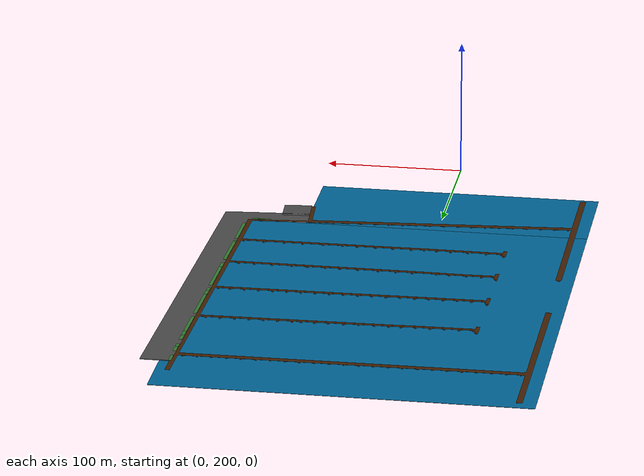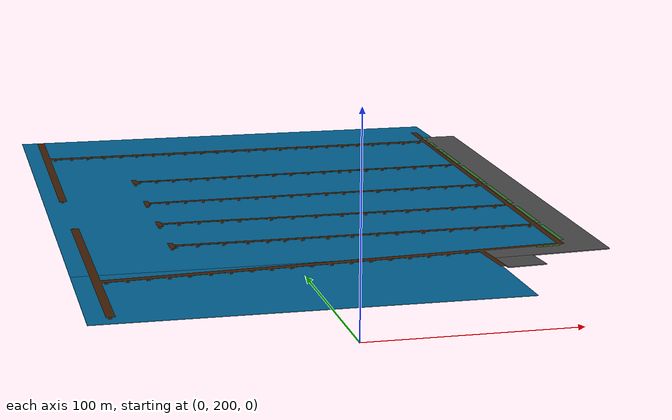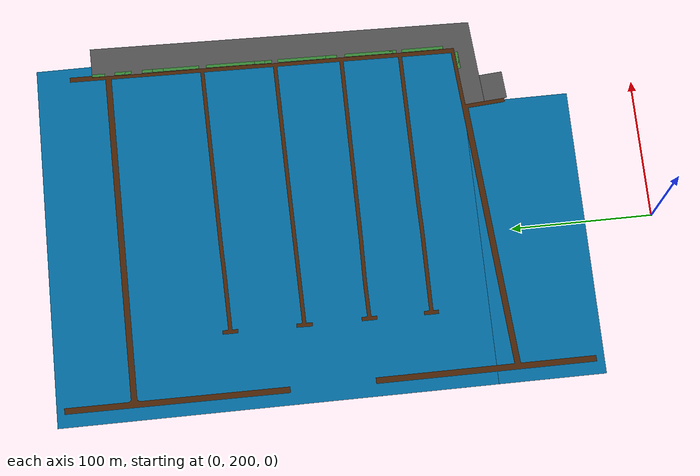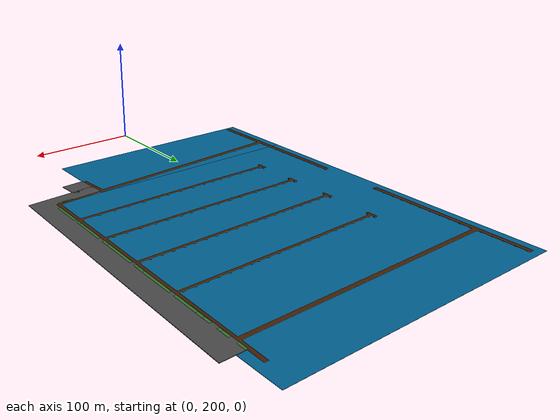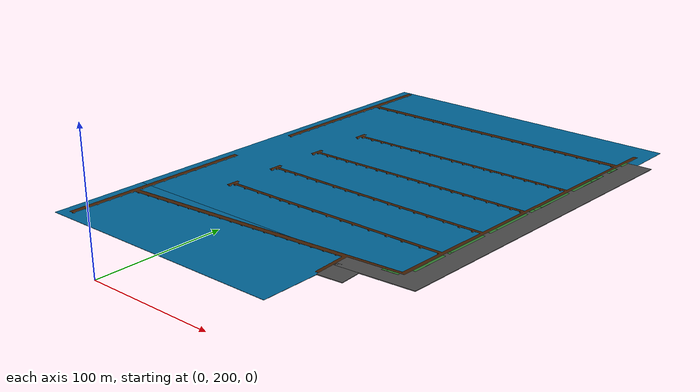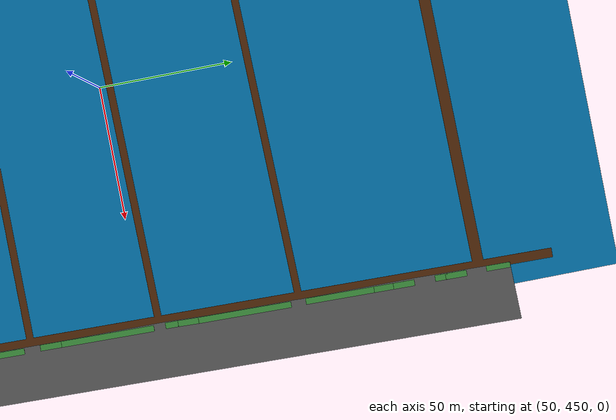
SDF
<?xml version='1.0'?>
<sdf version='1.7'>
  <model name='world_zona_B_environment'>
    <static>true</static>
    <pose>0 0 0 0 0 0</pose>

    <include>
      <uri>/marinero_simulations/models/Marina_Zona_B</uri>
      <pose>94.318800 292.840000 0.08 0 0 0</pose>
    </include>

    <include>
      <uri>/marinero_simulations/models/sea_plane_B1</uri>
      <pose>21.285 475.0 0 0 0 0.0004</pose>
    </include>

    <include>
      <uri>/marinero_simulations/models/sea_plane_B2</uri>
      <pose>-6.139 285.0 0 0 0 0.0004</pose>
    </include>

    <include>
      <uri>/marinero_simulations/models/asphalt_plane_zone_B</uri>
      <pose>96.130478 307.399536 0 0 0 0</pose>
    </include>

    <include>
      <uri>/marinero_simulations/models/asphalt_plane_XS</uri>
      <pose>106.578583 301.612610 0 0 0 0</pose>
    </include>

    <include>
      <uri>/marinero_simulations/models/grass_plane_XS</uri>
      <name>grass_0</name>
      <pose>143.796000 583.12000 0 0 0 0</pose>
    </include>

    <include>
      <uri>/marinero_simulations/models/grass_plane_SM</uri>
      <name>grass_1</name>
      <pose>143.811325 567.149231 0 0 0 0</pose>
    </include>

    <include>
      <uri>/marinero_simulations/models/grass_plane_S</uri>
      <name>grass_2</name>
      <pose>143.703766 561.695679 0 0 0 0</pose>
    </include>

    <include>
      <uri>/marinero_simulations/models/grass_plane_SM</uri>
      <name>grass_3</name>
      <pose>143.624954 547.390930 0 0 0 0</pose>
    </include>

    <include>
      <uri>/marinero_simulations/models/grass_plane_SM</uri>
      <name>grass_4</name>
      <pose>143.477814 539.911926 0 0 0 0</pose>
    </include>

    <include>
      <uri>/marinero_simulations/models/grass_plane_M</uri>
      <name>grass_5</name>
      <pose>143.148788 523.226013 0 0 0 0</pose>
    </include>

    <include>
      <uri>/marinero_simulations/models/grass_plane</uri>
      <name>grass_6</name>
      <pose>142.555176 487.275604 0 0 0 0</pose>
    </include>

    <include>
      <uri>/marinero_simulations/models/grass_plane_SM</uri>
      <name>grass_7</name>
      <pose>142.064011 466.055359 0 0 0 -0.018462</pose>
    </include>

    <include>
      <uri>/marinero_simulations/models/grass_plane_S</uri>
      <name>grass_8</name>
      <pose>141.874283 459.836212 0 0 0 0</pose>
    </include>

    <include>
      <uri>/marinero_simulations/models/grass_plane</uri>
      <name>grass_9</name>
      <pose>141.559189 435.483673 0 0 0 0</pose>
    </include>

    <include>
      <uri>/marinero_simulations/models/grass_plane_SM</uri>
      <name>grass_10</name>
      <pose>141.136093 414.013672 0 0 0 0</pose>
    </include>

    <include>
      <uri>/marinero_simulations/models/grass_plane</uri>
      <name>grass_11</name>
      <pose>140.760880 386.513733 0 0 0 0</pose>
    </include>

    <include>
      <uri>/marinero_simulations/models/grass_plane_S</uri>
      <name>grass_12</name>
      <pose>140.415421 369.034607 0 0 0 0</pose>
    </include>

    <include>
      <uri>/marinero_simulations/models/grass_plane_L</uri>
      <name>grass_13</name>
      <pose>140.158173 347.402802 0 0 0 -0.008000</pose>
    </include>

    <include>
      <uri>/marinero_simulations/models/grass_plane_XS</uri>
      <name>grass_14</name>
      <pose>131.264 322.973 0 0 0 -1.478720</pose>
    </include>

    <include>
      <uri>/marinero_simulations/models/grass_plane_XS</uri>
      <name>grass_15</name>
      <pose>127.521 322.702 0 0 0 -1.478720</pose>
    </include>

  </model>
</sdf>

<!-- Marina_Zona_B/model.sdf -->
<sdf version='1.7'>
  <model name='Marina_Zona_B'>
    <link name='link'>
      <self_collide>0</self_collide>
      <gravity>1</gravity>
      <inertial>
        <mass>100000</mass>
        <pose>0 0 0 0 -0 0</pose>
        <inertia>
          <ixx>1</ixx>
          <ixy>0</ixy>
          <ixz>0</ixz>
          <iyy>1</iyy>
          <iyz>0</iyz>
          <izz>1</izz>
        </inertia>
      </inertial>
      <enable_wind>0</enable_wind>
      <kinematic>0</kinematic>
      <pose>0 0 0 0 0 0</pose>
      <visual name='visual'>
        <pose>0 0 0 0 0 0</pose>
        <geometry>
          <mesh>
            <uri>model://Marina_Zona_B/meshes/Marina_Zona_B.stl</uri>
            <scale>1 1 1</scale>
          </mesh>
        </geometry>
        <material>
          <ambient>0.278 0.129 0.02 1</ambient>
          <diffuse>0.278 0.129 0.02 1</diffuse>
          <specular>0.278 0.129 0.02 1</specular>
          <emissive>0 0 0 1</emissive>
          <shader type='pixel'>
            <normal_map>__default__</normal_map>
          </shader>
        </material>
        <transparency>0</transparency>
        <cast_shadows>1</cast_shadows>
      </visual>
      <collision name='collision'>
        <laser_retro>0</laser_retro>
        <max_contacts>10</max_contacts>
        <pose>0 0 0 0 0 0</pose>
        <geometry>
          <mesh>
            <uri>model://Marina_Zona_B/meshes/Marina_Zona_B.stl</uri>
            <scale>1 1 1</scale>
          </mesh>
        </geometry>
        <surface>
          <friction>
            <ode>
              <mu>1.0</mu>
              <mu2>1.0</mu2>
              <fdir1>0 0 0</fdir1>
              <slip1>0.001</slip1>
              <slip2>1e-05</slip2>
            </ode>
            <torsional>
              <coefficient>1</coefficient>
              <patch_radius>0</patch_radius>
              <surface_radius>0</surface_radius>
              <use_patch_radius>1</use_patch_radius>
              <ode>
                <slip>0</slip>
              </ode>
            </torsional>
          </friction>
          <bounce>
            <restitution_coefficient>0</restitution_coefficient>
            <threshold>1000</threshold>
          </bounce>
          <contact>
            <collide_without_contact>0</collide_without_contact>
            <collide_without_contact_bitmask>0</collide_without_contact_bitmask>
            <collide_bitmask>1</collide_bitmask>
            <ode>
              <soft_cfm>0</soft_cfm>
              <soft_erp>0.2</soft_erp>
              <kp>1e+13</kp>
              <kd>10</kd>
              <max_vel>0.01</max_vel>
              <min_depth>0.001</min_depth>
            </ode>
            <bullet>
              <split_impulse>1</split_impulse>
              <split_impulse_penetration_threshold>-0.01</split_impulse_penetration_threshold>
              <soft_cfm>0</soft_cfm>
              <soft_erp>0.2</soft_erp>
              <kp>1e+11</kp>
              <kd>100</kd>
            </bullet>
          </contact>
        </surface>
      </collision>
    </link>
    <static>1</static>
    <allow_auto_disable>1</allow_auto_disable>
  </model>
</sdf>

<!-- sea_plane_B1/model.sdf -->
<sdf version='1.7'>
  <model name='sea_plane_B1'>
    <link name='link'>
      <self_collide>0</self_collide>
      <enable_wind>0</enable_wind>
      <kinematic>0</kinematic>
      <pose>0 0 0 0 -0 0</pose>
      <gravity>1</gravity>
      <inertial>
        <mass>5.27875e+06</mass>
        <pose>0 0 0 0 -0 0</pose>
      </inertial>
      <visual name='visual'>
        <cast_shadows>0</cast_shadows>
        <geometry>
          <box>
            <size>260 305 0.25</size>
          </box>
        </geometry>
        <material>
          <ambient>0.0 0.4 0.6 1.0</ambient>
          <diffuse>0.0 0.4 0.6 1.0</diffuse>
          <specular>0.2 0.2 0.2 1.0</specular>
          <pbr>
            <metal>
              <albedo_map>model://sea_plane/materials/textures/sea_plane.jpg</albedo_map>
            </metal>
          </pbr>
        </material>
        <pose>0 0 0 0 -0 0</pose>
        <transparency>0</transparency>
      </visual>
      <collision name='collision'>
        <laser_retro>0</laser_retro>
        <max_contacts>10</max_contacts>
        <pose>0 0 0 0 -0 0</pose>
        <geometry>
          <box>
            <size>260 305 0.25</size>
          </box>
        </geometry>
        <surface>
          <friction>
            <ode>
              <mu>1</mu>
              <mu2>1</mu2>
              <fdir1>0 0 0</fdir1>
              <slip1>0</slip1>
              <slip2>0</slip2>
            </ode>
            <torsional>
              <coefficient>1</coefficient>
              <patch_radius>0</patch_radius>
              <surface_radius>0</surface_radius>
              <use_patch_radius>1</use_patch_radius>
              <ode>
                <slip>0</slip>
              </ode>
            </torsional>
          </friction>
          <bounce>
            <restitution_coefficient>0</restitution_coefficient>
            <threshold>1e+06</threshold>
          </bounce>
          <contact>
            <collide_without_contact>0</collide_without_contact>
            <collide_without_contact_bitmask>1</collide_without_contact_bitmask>
            <collide_bitmask>1</collide_bitmask>
            <ode>
              <soft_cfm>0</soft_cfm>
              <soft_erp>0.2</soft_erp>
              <kp>1e+13</kp>
              <kd>1</kd>
              <max_vel>0.01</max_vel>
              <min_depth>0</min_depth>
            </ode>
            <bullet>
              <split_impulse>1</split_impulse>
              <split_impulse_penetration_threshold>-0.01</split_impulse_penetration_threshold>
              <soft_cfm>0</soft_cfm>
              <soft_erp>0.2</soft_erp>
              <kp>1e+13</kp>
              <kd>1</kd>
            </bullet>
          </contact>
        </surface>
      </collision>
    </link>
    <static>1</static>
    <allow_auto_disable>1</allow_auto_disable>
  </model>
</sdf>

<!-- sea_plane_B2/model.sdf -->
<sdf version='1.7'>
  <model name='sea_plane_B2'>
    <link name='link'>
      <self_collide>0</self_collide>
      <enable_wind>0</enable_wind>
      <kinematic>0</kinematic>
      <pose>0 0 0 0 -0 0</pose>
      <gravity>1</gravity>
      <inertial>
        <mass>5.27875e+06</mass>
        <pose>0 0 0 0 -0 0</pose>
      </inertial>
      <visual name='visual'>
        <cast_shadows>0</cast_shadows>
        <geometry>
          <box>
            <size>205 75 0.25</size>
          </box>
        </geometry>
        <material>
          <ambient>0.0 0.4 0.6 1.0</ambient>
          <diffuse>0.0 0.4 0.6 1.0</diffuse>
          <specular>0.2 0.2 0.2 1.0</specular>
          <pbr>
            <metal>
              <albedo_map>model://sea_plane/materials/textures/sea_plane.jpg</albedo_map>
            </metal>
          </pbr>
        </material>
        <pose>0 0 0 0 -0 0</pose>
        <transparency>0</transparency>
      </visual>
      <collision name='collision'>
        <laser_retro>0</laser_retro>
        <max_contacts>10</max_contacts>
        <pose>0 0 0 0 -0 0</pose>
        <geometry>
          <box>
            <size>205 75 0.25</size>
          </box>
        </geometry>
        <surface>
          <friction>
            <ode>
              <mu>1</mu>
              <mu2>1</mu2>
              <fdir1>0 0 0</fdir1>
              <slip1>0</slip1>
              <slip2>0</slip2>
            </ode>
            <torsional>
              <coefficient>1</coefficient>
              <patch_radius>0</patch_radius>
              <surface_radius>0</surface_radius>
              <use_patch_radius>1</use_patch_radius>
              <ode>
                <slip>0</slip>
              </ode>
            </torsional>
          </friction>
          <bounce>
            <restitution_coefficient>0</restitution_coefficient>
            <threshold>1e+06</threshold>
          </bounce>
          <contact>
            <collide_without_contact>0</collide_without_contact>
            <collide_without_contact_bitmask>1</collide_without_contact_bitmask>
            <collide_bitmask>1</collide_bitmask>
            <ode>
              <soft_cfm>0</soft_cfm>
              <soft_erp>0.2</soft_erp>
              <kp>1e+13</kp>
              <kd>1</kd>
              <max_vel>0.01</max_vel>
              <min_depth>0</min_depth>
            </ode>
            <bullet>
              <split_impulse>1</split_impulse>
              <split_impulse_penetration_threshold>-0.01</split_impulse_penetration_threshold>
              <soft_cfm>0</soft_cfm>
              <soft_erp>0.2</soft_erp>
              <kp>1e+13</kp>
              <kd>1</kd>
            </bullet>
          </contact>
        </surface>
      </collision>
    </link>
    <static>1</static>
    <allow_auto_disable>1</allow_auto_disable>
  </model>
</sdf>

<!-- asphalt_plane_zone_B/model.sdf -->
<sdf version='1.7'>
  <model name='asphalt_plane_zone_B'>
    <link name='link'>
      <self_collide>0</self_collide>
      <gravity>1</gravity>
      <inertial>
        <mass>1</mass>
        <pose>0 0 0 0 0 0</pose>
        <inertia>
          <ixx>1</ixx>
          <ixy>0</ixy>
          <ixz>0</ixz>
          <iyy>1</iyy>
          <iyz>0</iyz>
          <izz>1</izz>
        </inertia>
      </inertial>
      <enable_wind>0</enable_wind>
      <kinematic>0</kinematic>
      <pose>0 0 1.015 0 0 -0.045</pose>
      <visual name='visual'>
        <pose>0 0 0 0 0 0</pose>
        <geometry>
          <mesh>
            <uri>model://asphalt_plane_zone_B/meshes/asphalt_plane_zone_B.dae</uri>
            <scale>1 1 1</scale>
          </mesh>
        </geometry>
        <material>
          <ambient>0.3 0.3 0.3 1.0</ambient>
          <diffuse>0.3 0.3 0.3 1.0</diffuse>
          <specular>0.1 0.1 0.1 1.0</specular>
        </material>
        <transparency>0</transparency>
        <cast_shadows>1</cast_shadows>
      </visual>
      <collision name='collision'>
        <laser_retro>0</laser_retro>
        <max_contacts>10</max_contacts>
        <pose>0 0 0 0 0 0</pose>
        <geometry>
          <mesh>
            <uri>model://asphalt_plane_zone_B/meshes/asphalt_plane_zone_B.dae</uri>
            <scale>1 1 1</scale>
          </mesh>
        </geometry>
        <surface>
          <friction>
            <ode>
              <mu>1</mu>
              <mu2>1</mu2>
              <fdir1>0 0 0</fdir1>
              <slip1>0.001</slip1>
              <slip2>1e-05</slip2>
            </ode>
            <torsional>
              <coefficient>1</coefficient>
              <patch_radius>0</patch_radius>
              <surface_radius>0</surface_radius>
              <use_patch_radius>1</use_patch_radius>
              <ode>
                <slip>0</slip>
              </ode>
            </torsional>
          </friction>
          <bounce>
            <restitution_coefficient>0</restitution_coefficient>
            <threshold>1e+06</threshold>
          </bounce>
          <contact>
            <collide_without_contact>0</collide_without_contact>
            <collide_without_contact_bitmask>1</collide_without_contact_bitmask>
            <collide_bitmask>1</collide_bitmask>
            <ode>
              <soft_cfm>0</soft_cfm>
              <soft_erp>0.2</soft_erp>
              <kp>1e+13</kp>
              <kd>1</kd>
              <max_vel>0.01</max_vel>
              <min_depth>0</min_depth>
            </ode>
            <bullet>
              <split_impulse>1</split_impulse>
              <split_impulse_penetration_threshold>-0.01</split_impulse_penetration_threshold>
              <soft_cfm>0</soft_cfm>
              <soft_erp>0.2</soft_erp>
              <kp>1e+13</kp>
              <kd>1</kd>
            </bullet>
          </contact>
        </surface>
      </collision>
    </link>
    <static>1</static>
    <allow_auto_disable>1</allow_auto_disable>
  </model>
</sdf>

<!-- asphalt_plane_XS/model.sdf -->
<sdf version='1.7'>
  <model name='asphalt_plane_XS'>
    <link name='link'>
      <self_collide>0</self_collide>
      <enable_wind>0</enable_wind>
      <kinematic>0</kinematic>
      <pose>0 0 1.015 0 0 -1.4981</pose>
      <gravity>1</gravity>
      <inertial>
        <mass>1</mass>
        <pose>0 0 0 0 0 0</pose>
        <inertia>
          <ixx>1</ixx>
          <ixy>0</ixy>
          <ixz>0</ixz>
          <iyy>1</iyy>
          <iyz>0</iyz>
          <izz>1</izz>
        </inertia>
      </inertial>
      <visual name='visual'>
        <cast_shadows>0</cast_shadows>
        <geometry>
          <box>
            <size>20 20 0.5</size>
          </box>
        </geometry>
        <material>
          <ambient>0.3 0.3 0.3 1.0</ambient>
          <diffuse>0.3 0.3 0.3 1.0</diffuse>
          <specular>0.1 0.1 0.1 1.0</specular>
        </material>
        <pose>0 0 0 0 0 0</pose>
        <transparency>0</transparency>
      </visual>
      <collision name='collision'>
        <laser_retro>0</laser_retro>
        <max_contacts>10</max_contacts>
        <pose>0 0 0 0 0 0</pose>
        <geometry>
          <box>
            <size>20 20 0.5</size>
          </box>
        </geometry>
        <surface>
          <friction>
            <ode>
              <mu>1</mu>
              <mu2>1</mu2>
              <fdir1>0 0 0</fdir1>
              <slip1>0.001</slip1>
              <slip2>1e-05</slip2>
            </ode>
            <torsional>
              <coefficient>1</coefficient>
              <patch_radius>0</patch_radius>
              <surface_radius>0</surface_radius>
              <use_patch_radius>1</use_patch_radius>
              <ode>
                <slip>0</slip>
              </ode>
            </torsional>
          </friction>
          <bounce>
            <restitution_coefficient>0</restitution_coefficient>
            <threshold>1e+06</threshold>
          </bounce>
          <contact>
            <collide_without_contact>0</collide_without_contact>
            <collide_without_contact_bitmask>1</collide_without_contact_bitmask>
            <collide_bitmask>1</collide_bitmask>
            <ode>
              <soft_cfm>0</soft_cfm>
              <soft_erp>0.2</soft_erp>
              <kp>1e+13</kp>
              <kd>1</kd>
              <max_vel>0.01</max_vel>
              <min_depth>0</min_depth>
            </ode>
            <bullet>
              <split_impulse>1</split_impulse>
              <split_impulse_penetration_threshold>-0.01</split_impulse_penetration_threshold>
              <soft_cfm>0</soft_cfm>
              <soft_erp>0.2</soft_erp>
              <kp>1e+13</kp>
              <kd>1</kd>
            </bullet>
          </contact>
        </surface>
      </collision>
    </link>
    <static>1</static>
    <allow_auto_disable>1</allow_auto_disable>
  </model>
</sdf>

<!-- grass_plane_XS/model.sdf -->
<sdf version='1.7'>
  <model name='grass_plane_XS'>
    <link name='link'>
      <self_collide>0</self_collide>
      <enable_wind>0</enable_wind>
      <kinematic>0</kinematic>
      <pose>0 0 1.255 0 0 -1.5905</pose>
      <gravity>1</gravity>
      <inertial>
        <mass>1</mass>
        <pose>0 0 0 0 0 0</pose>
        <inertia>
          <ixx>1</ixx>
          <ixy>0</ixy>
          <ixz>0</ixz>
          <iyy>1</iyy>
          <iyz>0</iyz>
          <izz>1</izz>
        </inertia>
      </inertial>
      <visual name='visual'>
        <cast_shadows>0</cast_shadows>
        <geometry>
          <box>
            <size>9 2 0.1</size>
          </box>
        </geometry>
        <material>
          <ambient>0.2 0.5 0.2 1</ambient>
          <diffuse>0.2 0.5 0.2 1</diffuse>
          <specular>0.2 0.2 0.2 1</specular>
          <pbr>
            <metal>
              <albedo_map>model://grass_plane/materials/textures/grass.jpg</albedo_map>
            </metal>
          </pbr>
        </material>
        <pose>0 0 0 0 0 0</pose>
        <transparency>0</transparency>
      </visual>
      <collision name='collision'>
        <laser_retro>0</laser_retro>
        <max_contacts>10</max_contacts>
        <pose>0 0 0 0 0 0</pose>
        <geometry>
          <box>
            <size>9 2 0.1</size>
          </box>
        </geometry>
        <surface>
          <friction>
            <ode>
              <mu>1</mu>
              <mu2>1</mu2>
              <fdir1>0 0 0</fdir1>
              <slip1>0.001</slip1>
              <slip2>1e-05</slip2>
            </ode>
            <torsional>
              <coefficient>1</coefficient>
              <patch_radius>0</patch_radius>
              <surface_radius>0</surface_radius>
              <use_patch_radius>1</use_patch_radius>
              <ode>
                <slip>0</slip>
              </ode>
            </torsional>
          </friction>
          <bounce>
            <restitution_coefficient>0</restitution_coefficient>
            <threshold>1e+06</threshold>
          </bounce>
          <contact>
            <collide_without_contact>0</collide_without_contact>
            <collide_without_contact_bitmask>1</collide_without_contact_bitmask>
            <collide_bitmask>1</collide_bitmask>
            <ode>
              <soft_cfm>0</soft_cfm>
              <soft_erp>0.2</soft_erp>
              <kp>1e+13</kp>
              <kd>1</kd>
              <max_vel>0.01</max_vel>
              <min_depth>0</min_depth>
            </ode>
            <bullet>
              <split_impulse>1</split_impulse>
              <split_impulse_penetration_threshold>-0.01</split_impulse_penetration_threshold>
              <soft_cfm>0</soft_cfm>
              <soft_erp>0.2</soft_erp>
              <kp>1e+13</kp>
              <kd>1</kd>
            </bullet>
          </contact>
        </surface>
      </collision>
    </link>
    <static>1</static>
    <allow_auto_disable>1</allow_auto_disable>
  </model>
</sdf>

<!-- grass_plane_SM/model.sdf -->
<sdf version='1.7'>
  <model name='grass_plane_SM'>
    <link name='link'>
      <self_collide>0</self_collide>
      <enable_wind>0</enable_wind>
      <kinematic>0</kinematic>
      <pose>0 0 1.255 0 0 -1.5905</pose>
      <gravity>1</gravity>
      <inertial>
        <mass>1</mass>
        <pose>0 0 0 0 0 0</pose>
        <inertia>
          <ixx>1</ixx>
          <ixy>0</ixy>
          <ixz>0</ixz>
          <iyy>1</iyy>
          <iyz>0</iyz>
          <izz>1</izz>
        </inertia>
      </inertial>
      <visual name='visual'>
        <cast_shadows>0</cast_shadows>
        <geometry>
          <box>
            <size>8 2.25 0.1</size>
          </box>
        </geometry>
        <material>
          <ambient>0.2 0.5 0.2 1</ambient>
          <diffuse>0.2 0.5 0.2 1</diffuse>
          <specular>0.2 0.2 0.2 1</specular>
          <pbr>
            <metal>
              <albedo_map>model://grass_plane/materials/textures/grass.jpg</albedo_map>
            </metal>
          </pbr>
        </material>
        <pose>0 0 0 0 0 0</pose>
        <transparency>0</transparency>
      </visual>
      <collision name='collision'>
        <laser_retro>0</laser_retro>
        <max_contacts>10</max_contacts>
        <pose>0 0 0 0 0 0</pose>
        <geometry>
          <box>
            <size>8 2.25 0.1</size>
          </box>
        </geometry>
        <surface>
          <friction>
            <ode>
              <mu>1</mu>
              <mu2>1</mu2>
              <fdir1>0 0 0</fdir1>
              <slip1>0.001</slip1>
              <slip2>1e-05</slip2>
            </ode>
            <torsional>
              <coefficient>1</coefficient>
              <patch_radius>0</patch_radius>
              <surface_radius>0</surface_radius>
              <use_patch_radius>1</use_patch_radius>
              <ode>
                <slip>0</slip>
              </ode>
            </torsional>
          </friction>
          <bounce>
            <restitution_coefficient>0</restitution_coefficient>
            <threshold>1e+06</threshold>
          </bounce>
          <contact>
            <collide_without_contact>0</collide_without_contact>
            <collide_without_contact_bitmask>1</collide_without_contact_bitmask>
            <collide_bitmask>1</collide_bitmask>
            <ode>
              <soft_cfm>0</soft_cfm>
              <soft_erp>0.2</soft_erp>
              <kp>1e+13</kp>
              <kd>1</kd>
              <max_vel>0.01</max_vel>
              <min_depth>0</min_depth>
            </ode>
            <bullet>
              <split_impulse>1</split_impulse>
              <split_impulse_penetration_threshold>-0.01</split_impulse_penetration_threshold>
              <soft_cfm>0</soft_cfm>
              <soft_erp>0.2</soft_erp>
              <kp>1e+13</kp>
              <kd>1</kd>
            </bullet>
          </contact>
        </surface>
      </collision>
    </link>
    <static>1</static>
    <allow_auto_disable>1</allow_auto_disable>
  </model>
</sdf>

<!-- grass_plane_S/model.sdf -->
<sdf version='1.7'>
  <model name='grass_plane_S'>
    <link name='link'>
      <self_collide>0</self_collide>
      <enable_wind>0</enable_wind>
      <kinematic>0</kinematic>
      <pose>0 0 1.255 0 0 -1.5905</pose>
      <gravity>1</gravity>
      <inertial>
        <mass>1</mass>
        <pose>0 0 0 0 0 0</pose>
        <inertia>
          <ixx>1</ixx>
          <ixy>0</ixy>
          <ixz>0</ixz>
          <iyy>1</iyy>
          <iyz>0</iyz>
          <izz>1</izz>
        </inertia>
      </inertial>
      <visual name='visual'>
        <cast_shadows>0</cast_shadows>
        <geometry>
          <box>
            <size>5 2.25 0.1</size>
          </box>
        </geometry>
        <material>
          <ambient>0.2 0.5 0.2 1</ambient>
          <diffuse>0.2 0.5 0.2 1</diffuse>
          <specular>0.2 0.2 0.2 1</specular>
          <pbr>
            <metal>
              <albedo_map>model://grass_plane/materials/textures/grass.jpg</albedo_map>
            </metal>
          </pbr>
        </material>
        <pose>0 0 0 0 0 0</pose>
        <transparency>0</transparency>
      </visual>
      <collision name='collision'>
        <laser_retro>0</laser_retro>
        <max_contacts>10</max_contacts>
        <pose>0 0 0 0 0 0</pose>
        <geometry>
          <box>
            <size>5 2.25 0.1</size>
          </box>
        </geometry>
        <surface>
          <friction>
            <ode>
              <mu>1</mu>
              <mu2>1</mu2>
              <fdir1>0 0 0</fdir1>
              <slip1>0.001</slip1>
              <slip2>1e-05</slip2>
            </ode>
            <torsional>
              <coefficient>1</coefficient>
              <patch_radius>0</patch_radius>
              <surface_radius>0</surface_radius>
              <use_patch_radius>1</use_patch_radius>
              <ode>
                <slip>0</slip>
              </ode>
            </torsional>
          </friction>
          <bounce>
            <restitution_coefficient>0</restitution_coefficient>
            <threshold>1e+06</threshold>
          </bounce>
          <contact>
            <collide_without_contact>0</collide_without_contact>
            <collide_without_contact_bitmask>1</collide_without_contact_bitmask>
            <collide_bitmask>1</collide_bitmask>
            <ode>
              <soft_cfm>0</soft_cfm>
              <soft_erp>0.2</soft_erp>
              <kp>1e+13</kp>
              <kd>1</kd>
              <max_vel>0.01</max_vel>
              <min_depth>0</min_depth>
            </ode>
            <bullet>
              <split_impulse>1</split_impulse>
              <split_impulse_penetration_threshold>-0.01</split_impulse_penetration_threshold>
              <soft_cfm>0</soft_cfm>
              <soft_erp>0.2</soft_erp>
              <kp>1e+13</kp>
              <kd>1</kd>
            </bullet>
          </contact>
        </surface>
      </collision>
    </link>
    <static>1</static>
    <allow_auto_disable>1</allow_auto_disable>
  </model>
</sdf>

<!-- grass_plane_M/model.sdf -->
<sdf version='1.7'>
  <model name='grass_plane_M'>
    <link name='link'>
      <self_collide>0</self_collide>
      <enable_wind>0</enable_wind>
      <kinematic>0</kinematic>
      <pose>0 0 1.255 0 0 -1.5905</pose>
      <gravity>1</gravity>
      <inertial>
        <mass>1</mass>
        <pose>0 0 0 0 0 0</pose>
        <inertia>
          <ixx>1</ixx>
          <ixy>0</ixy>
          <ixz>0</ixz>
          <iyy>1</iyy>
          <iyz>0</iyz>
          <izz>1</izz>
        </inertia>
      </inertial>
      <visual name='visual'>
        <cast_shadows>0</cast_shadows>
        <geometry>
          <box>
            <size>25.75 2.25 0.1</size>
          </box>
        </geometry>
        <material>
          <ambient>0.2 0.5 0.2 1</ambient>
          <diffuse>0.2 0.5 0.2 1</diffuse>
          <specular>0.2 0.2 0.2 1</specular>
          <pbr>
            <metal>
              <albedo_map>model://grass_plane/materials/textures/grass.jpg</albedo_map>
            </metal>
          </pbr>
        </material>
        <pose>0 0 0 0 0 0</pose>
        <transparency>0</transparency>
      </visual>
      <collision name='collision'>
        <laser_retro>0</laser_retro>
        <max_contacts>10</max_contacts>
        <pose>0 0 0 0 0 0</pose>
        <geometry>
          <box>
            <size>25.75 2.25 0.1</size>
          </box>
        </geometry>
        <surface>
          <friction>
            <ode>
              <mu>1</mu>
              <mu2>1</mu2>
              <fdir1>0 0 0</fdir1>
              <slip1>0.001</slip1>
              <slip2>1e-05</slip2>
            </ode>
            <torsional>
              <coefficient>1</coefficient>
              <patch_radius>0</patch_radius>
              <surface_radius>0</surface_radius>
              <use_patch_radius>1</use_patch_radius>
              <ode>
                <slip>0</slip>
              </ode>
            </torsional>
          </friction>
          <bounce>
            <restitution_coefficient>0</restitution_coefficient>
            <threshold>1e+06</threshold>
          </bounce>
          <contact>
            <collide_without_contact>0</collide_without_contact>
            <collide_without_contact_bitmask>1</collide_without_contact_bitmask>
            <collide_bitmask>1</collide_bitmask>
            <ode>
              <soft_cfm>0</soft_cfm>
              <soft_erp>0.2</soft_erp>
              <kp>1e+13</kp>
              <kd>1</kd>
              <max_vel>0.01</max_vel>
              <min_depth>0</min_depth>
            </ode>
            <bullet>
              <split_impulse>1</split_impulse>
              <split_impulse_penetration_threshold>-0.01</split_impulse_penetration_threshold>
              <soft_cfm>0</soft_cfm>
              <soft_erp>0.2</soft_erp>
              <kp>1e+13</kp>
              <kd>1</kd>
            </bullet>
          </contact>
        </surface>
      </collision>
    </link>
    <static>1</static>
    <allow_auto_disable>1</allow_auto_disable>
  </model>
</sdf>

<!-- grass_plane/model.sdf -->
<sdf version='1.7'>
  <model name='grass_plane'>
    <link name='link'>
      <self_collide>0</self_collide>
      <enable_wind>0</enable_wind>
      <kinematic>0</kinematic>
      <pose>0 0 1.255 0 0 -1.5905</pose>
      <gravity>1</gravity>
      <inertial>
        <mass>1</mass>
        <pose>0 0 0 0 0 0</pose>
        <inertia>
          <ixx>1</ixx>
          <ixy>0</ixy>
          <ixz>0</ixz>
          <iyy>1</iyy>
          <iyz>0</iyz>
          <izz>1</izz>
        </inertia>
      </inertial>
      <visual name='visual'>
        <cast_shadows>0</cast_shadows>
        <geometry>
          <box>
            <size>35 2.25 0.1</size>
          </box>
        </geometry>
        <material>
          <ambient>0.2 0.5 0.2 1</ambient>
          <diffuse>0.2 0.5 0.2 1</diffuse>
          <specular>0.2 0.2 0.2 1</specular>
          <pbr>
            <metal>
              <albedo_map>model://grass_plane/materials/textures/grass.jpg</albedo_map>
            </metal>
          </pbr>
        </material>
        <pose>0 0 0 0 0 0</pose>
        <transparency>0</transparency>
      </visual>
      <collision name='collision'>
        <laser_retro>0</laser_retro>
        <max_contacts>10</max_contacts>
        <pose>0 0 0 0 0 0</pose>
        <geometry>
          <box>
            <size>35 2.25 0.1</size>
          </box>
        </geometry>
        <surface>
          <friction>
            <ode>
              <mu>1</mu>
              <mu2>1</mu2>
              <fdir1>0 0 0</fdir1>
              <slip1>0.001</slip1>
              <slip2>1e-05</slip2>
            </ode>
            <torsional>
              <coefficient>1</coefficient>
              <patch_radius>0</patch_radius>
              <surface_radius>0</surface_radius>
              <use_patch_radius>1</use_patch_radius>
              <ode>
                <slip>0</slip>
              </ode>
            </torsional>
          </friction>
          <bounce>
            <restitution_coefficient>0</restitution_coefficient>
            <threshold>1e+06</threshold>
          </bounce>
          <contact>
            <collide_without_contact>0</collide_without_contact>
            <collide_without_contact_bitmask>1</collide_without_contact_bitmask>
            <collide_bitmask>1</collide_bitmask>
            <ode>
              <soft_cfm>0</soft_cfm>
              <soft_erp>0.2</soft_erp>
              <kp>1e+13</kp>
              <kd>1</kd>
              <max_vel>0.01</max_vel>
              <min_depth>0</min_depth>
            </ode>
            <bullet>
              <split_impulse>1</split_impulse>
              <split_impulse_penetration_threshold>-0.01</split_impulse_penetration_threshold>
              <soft_cfm>0</soft_cfm>
              <soft_erp>0.2</soft_erp>
              <kp>1e+13</kp>
              <kd>1</kd>
            </bullet>
          </contact>
        </surface>
      </collision>
    </link>
    <static>1</static>
    <allow_auto_disable>1</allow_auto_disable>
  </model>
</sdf>

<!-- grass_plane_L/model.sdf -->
<sdf version='1.7'>
  <model name='grass_plane_L'>
    <link name='link'>
      <self_collide>0</self_collide>
      <enable_wind>0</enable_wind>
      <kinematic>0</kinematic>
      <pose>0 0 1.255 0 0 -1.5755</pose>
      <gravity>1</gravity>
      <inertial>
        <mass>1</mass>
        <pose>0 0 0 0 0 0</pose>
        <inertia>
          <ixx>1</ixx>
          <ixy>0</ixy>
          <ixz>0</ixz>
          <iyy>1</iyy>
          <iyz>0</iyz>
          <izz>1</izz>
        </inertia>
      </inertial>
      <visual name='visual'>
        <cast_shadows>0</cast_shadows>
        <geometry>
          <box>
            <size>30 2.25 0.1</size>
          </box>
        </geometry>
        <material>
          <ambient>0.2 0.5 0.2 1</ambient>
          <diffuse>0.2 0.5 0.2 1</diffuse>
          <specular>0.2 0.2 0.2 1</specular>
          <pbr>
            <metal>
              <albedo_map>model://grass_plane/materials/textures/grass.jpg</albedo_map>
            </metal>
          </pbr>
        </material>
        <pose>0 0 0 0 0 0</pose>
        <transparency>0</transparency>
      </visual>
      <collision name='collision'>
        <laser_retro>0</laser_retro>
        <max_contacts>10</max_contacts>
        <pose>0 0 0 0 0 0</pose>
        <geometry>
          <box>
            <size>30 2.25 0.1</size>
          </box>
        </geometry>
        <surface>
          <friction>
            <ode>
              <mu>1</mu>
              <mu2>1</mu2>
              <fdir1>0 0 0</fdir1>
              <slip1>0.001</slip1>
              <slip2>1e-05</slip2>
            </ode>
            <torsional>
              <coefficient>1</coefficient>
              <patch_radius>0</patch_radius>
              <surface_radius>0</surface_radius>
              <use_patch_radius>1</use_patch_radius>
              <ode>
                <slip>0</slip>
              </ode>
            </torsional>
          </friction>
          <bounce>
            <restitution_coefficient>0</restitution_coefficient>
            <threshold>1e+06</threshold>
          </bounce>
          <contact>
            <collide_without_contact>0</collide_without_contact>
            <collide_without_contact_bitmask>1</collide_without_contact_bitmask>
            <collide_bitmask>1</collide_bitmask>
            <ode>
              <soft_cfm>0</soft_cfm>
              <soft_erp>0.2</soft_erp>
              <kp>1e+13</kp>
              <kd>1</kd>
              <max_vel>0.01</max_vel>
              <min_depth>0</min_depth>
            </ode>
            <bullet>
              <split_impulse>1</split_impulse>
              <split_impulse_penetration_threshold>-0.01</split_impulse_penetration_threshold>
              <soft_cfm>0</soft_cfm>
              <soft_erp>0.2</soft_erp>
              <kp>1e+13</kp>
              <kd>1</kd>
            </bullet>
          </contact>
        </surface>
      </collision>
    </link>
    <static>1</static>
    <allow_auto_disable>1</allow_auto_disable>
  </model>
</sdf>
